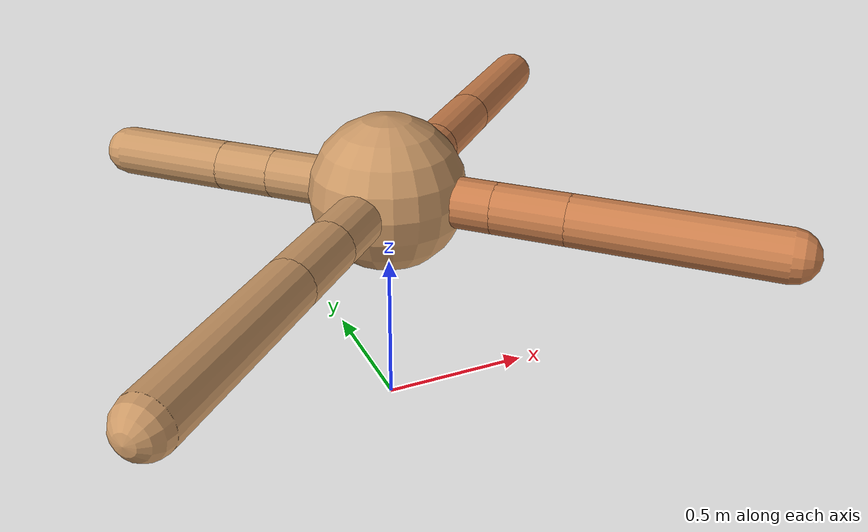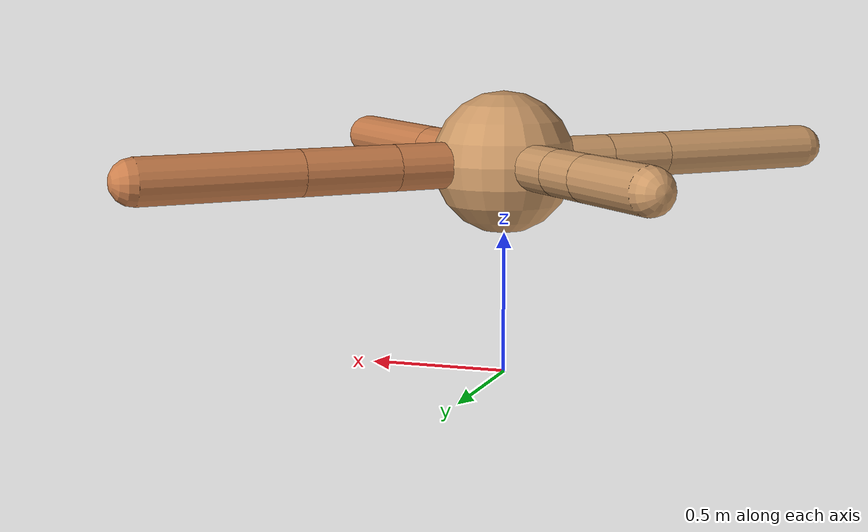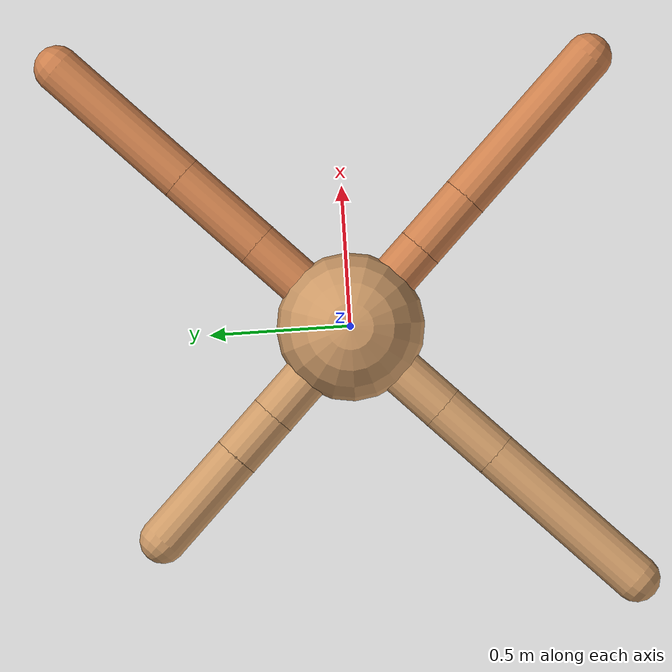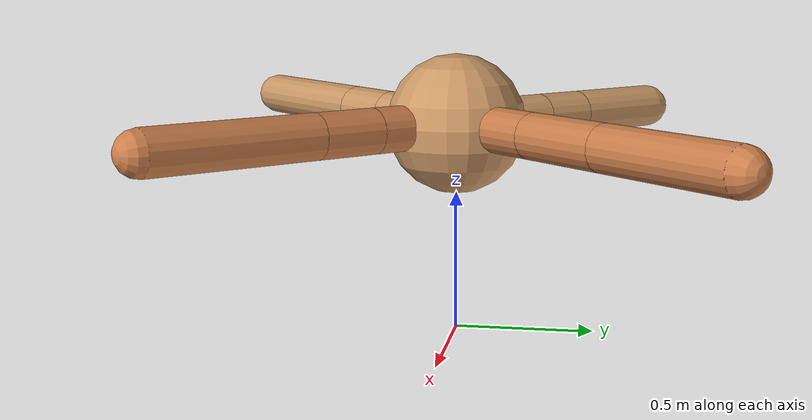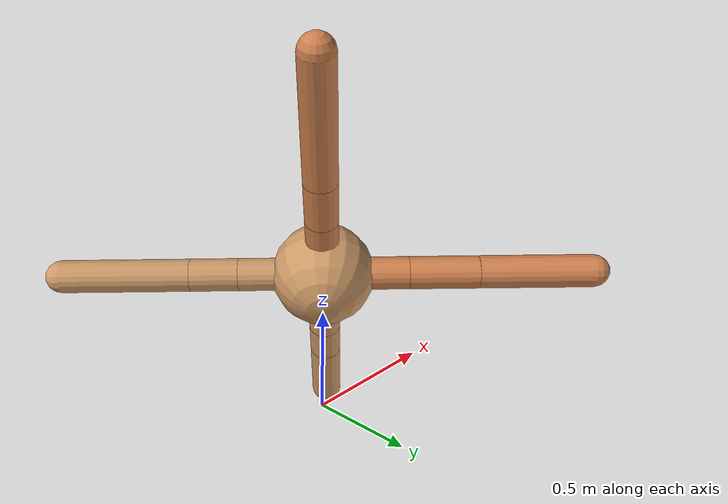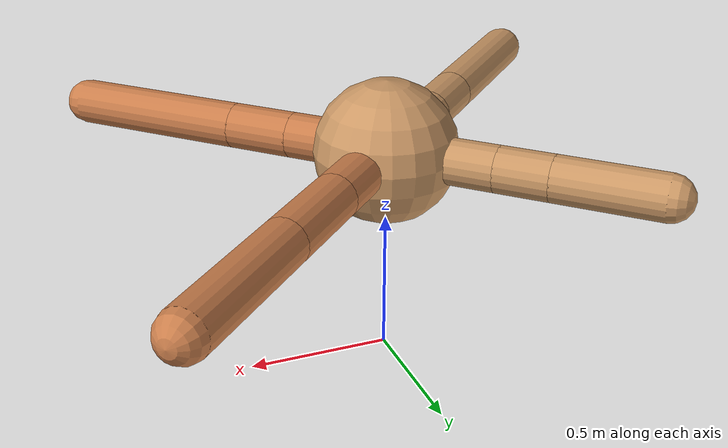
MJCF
<mujoco model="ant">
  <compiler angle="degree" coordinate="local" inertiafromgeom="true" />
  <option integrator="RK4" timestep="0.01" />
  <custom>
    <numeric data="0.0 0.0 0.55 1.0 0.0 0.0 0.0 0.0 1.0 0.0 -1.0 0.0 -1.0 0.0 1.0" name="init_qpos" />
  </custom>
  <default>
    <joint armature="1" damping="1" limited="true" />
    <geom conaffinity="0" condim="3" density="5.0" friction="1.5 0.1 0.1" margin="0.01" rgba="0.8 0.6 0.4 1" />
  </default>
  <worldbody>
    <body name="torso" pos="0 0 0.75">
      <geom name="torso_geom" pos="0 0 0" size="0.25" type="sphere" />

      <body name="front_left_leg" pos="0 0 0">
        <geom fromto="0.0 0.0 0.0 0.2954382401979815 0.2954382401979815 0.0" name="aux_1_geom" size="0.08" type="capsule" rgba=".8 .5 .3 1" />
        <body name="aux_1" pos="0.2954382401979815 0.2954382401979815 0.0">
          <joint axis="0 0 1" name="hip_1" pos="0.0 0.0 0.0" range="-40 40" type="hinge" />
          <geom fromto="0.0 0.0 0.0 0.24013544127584996 0.24013544127584996 0.0" name="left_leg_geom" size="0.08" type="capsule" rgba=".8 .5 .3 1" />
          <body pos="0.24013544127584996 0.24013544127584996 0.0" name="front_left_foot">
            <joint axis="-1 1 0" name="ankle_1" pos="0.0 0.0 0.0" range="30 100" type="hinge" />
            <geom fromto="0.0 0.0 0.0 0.39281349914160657 0.39281349914160657 0.0" name="left_ankle_geom" size="0.08" type="capsule" rgba=".8 .5 .3 1" />
          </body>
        </body>
      </body>
      <body name="front_right_leg" pos="0 0 0">
        <geom fromto="0.0 0.0 0.0 -0.27944744730227217 0.27944744730227217 0.0" name="aux_2_geom" size="0.08" type="capsule" />
        <body name="aux_2" pos="-0.27944744730227217 0.27944744730227217 0.0">
          <joint axis="0 0 1" name="hip_2" pos="0.0 0.0 0.0" range="-40 40" type="hinge" />
          <geom fromto="0.0 0.0 0.0 -0.13165408966604794 0.13165408966604794 0.0" name="right_leg_geom" size="0.08" type="capsule" />
          <body pos="-0.13165408966604794 0.13165408966604794 0.0" name="front_right_foot">
            <joint axis="1 1 0" name="ankle_2" pos="0.0 0.0 0.0" range="-100 -30" type="hinge" />
            <geom fromto="0.0 0.0 0.0 -0.2635121813261334 0.2635121813261334 0.0" name="right_ankle_geom" size="0.08" type="capsule" />
          </body>
        </body>
      </body>
      <body name="left_back_leg" pos="0 0 0">
        <geom fromto="0.0 0.0 0.0 -0.29104692252643044 -0.29104692252643044 0.0" name="aux_3_geom" size="0.08" type="capsule" />
        <body name="aux_3" pos="-0.29104692252643044 -0.29104692252643044 0.0">
          <joint axis="0 0 1" name="hip_3" pos="0.0 0.0 0.0" range="-40 40" type="hinge" />
          <geom fromto="0.0 0.0 0.0 -0.16741960539064504 -0.16741960539064504 0.0" name="back_leg_geom" size="0.08" type="capsule" />
          <body pos="-0.16741960539064504 -0.16741960539064504 0.0" name="left_back_foot">
            <joint axis="-1 1 0" name="ankle_3" pos="0.0 0.0 0.0" range="-100 -30" type="hinge" />
            <geom fromto="0.0 0.0 0.0 -0.44672760483871826 -0.44672760483871826 0.0" name="third_ankle_geom" size="0.08" type="capsule" />
          </body>
        </body>
      </body>
      <body name="right_back_leg" pos="0 0 0">
        <geom fromto="0.0 0.0 0.0 0.2493956815189059 -0.2493956815189059 0.0" name="aux_4_geom" size="0.08" type="capsule" rgba=".8 .5 .3 1" />
        <body name="aux_4" pos="0.2493956815189059 -0.2493956815189059 0.0">
          <joint axis="0 0 1" name="hip_4" pos="0.0 0.0 0.0" range="-40 40" type="hinge" />
          <geom fromto="0.0 0.0 0.0 0.16142300971283477 -0.16142300971283477 0.0" name="rightback_leg_geom" size="0.08" type="capsule" rgba=".8 .5 .3 1" />
          <body pos="0.16142300971283477 -0.16142300971283477 0.0" name="right_back_foot">
            <joint axis="1 1 0" name="ankle_4" pos="0.0 0.0 0.0" range="30 100" type="hinge" />
            <geom fromto="0.0 0.0 0.0 0.4442915615315462 -0.4442915615315462 0.0" name="fourth_ankle_geom" size="0.08" type="capsule" rgba=".8 .5 .3 1" />
          </body>
        </body>
      </body>
    </body>
  </worldbody>
  <actuator>
    <motor ctrllimited="true" ctrlrange="-1.0 1.0" joint="hip_4" gear="150" />
    <motor ctrllimited="true" ctrlrange="-1.0 1.0" joint="ankle_4" gear="150" />
    <motor ctrllimited="true" ctrlrange="-1.0 1.0" joint="hip_1" gear="150" />
    <motor ctrllimited="true" ctrlrange="-1.0 1.0" joint="ankle_1" gear="150" />
    <motor ctrllimited="true" ctrlrange="-1.0 1.0" joint="hip_2" gear="150" />
    <motor ctrllimited="true" ctrlrange="-1.0 1.0" joint="ankle_2" gear="150" />
    <motor ctrllimited="true" ctrlrange="-1.0 1.0" joint="hip_3" gear="150" />
    <motor ctrllimited="true" ctrlrange="-1.0 1.0" joint="ankle_3" gear="150" />
  </actuator>
</mujoco>
